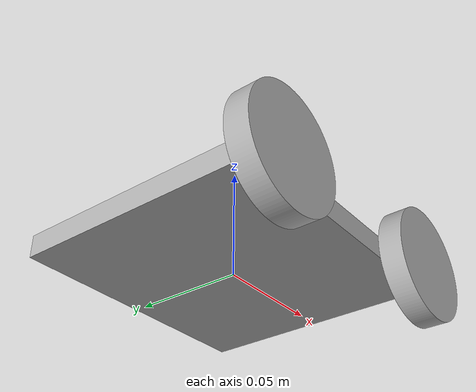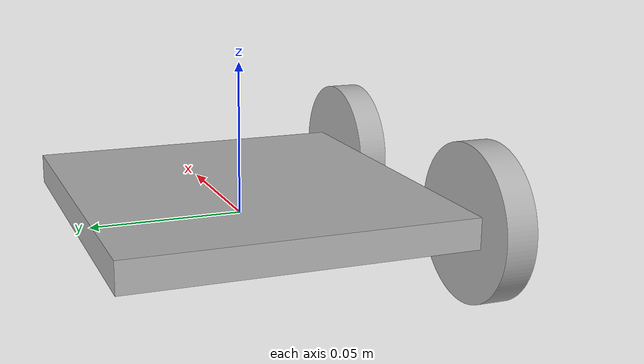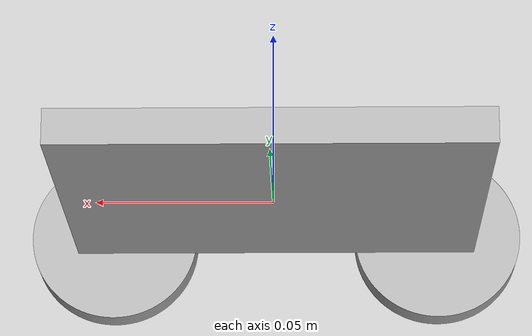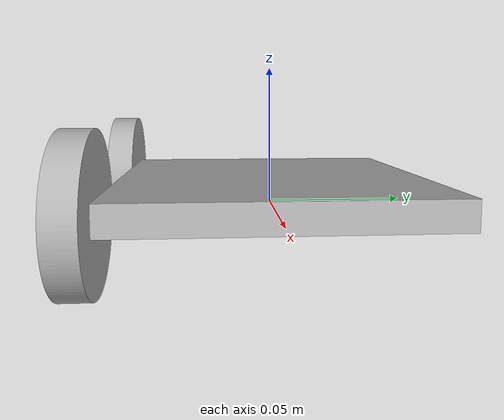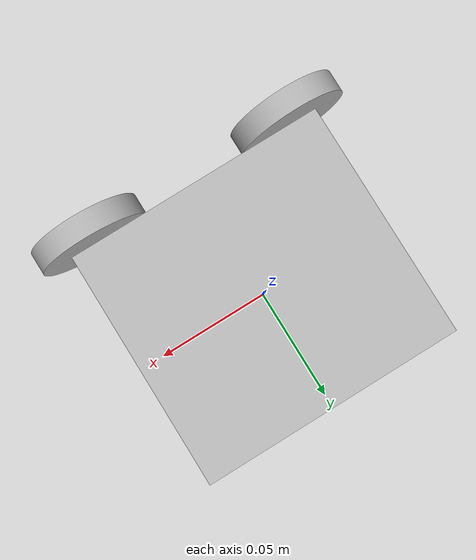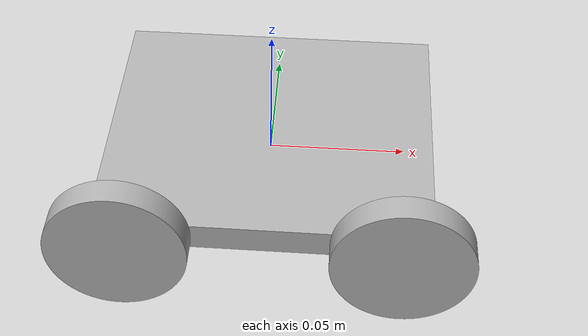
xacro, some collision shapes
<?xml version="1.0" ?>
<robot name="xbot" xmlns:xacro="http://www.ros.org/wiki/xacro">

<xacro:include filename="$(find xbot_description)/urdf/materials.xacro" />
<xacro:include filename="$(find xbot_description)/urdf/xbot.ros2control" />
<xacro:include filename="$(find xbot_description)/urdf/xbot.gazebo" />
<link name="base_link">
  <inertial>
    <origin xyz="0.0 0.0 0.005" rpy="0 0 0"/>
    <mass value="0.9450826877913348"/>
    <inertia ixx="0.000801" iyy="0.001146" izz="0.001931" ixy="0.0" iyz="0.0" ixz="0.0"/>
  </inertial>
  <visual>
    <origin xyz="0 0 0" rpy="0 0 0"/>
    <geometry>
      <mesh filename="file://$(find xbot_description)/meshes/base_link.stl" scale="0.001 0.001 0.001"/>
    </geometry>
    <material name="silver"/>
  </visual>
  <collision>
  <origin xyz="0 0 0.005" rpy="0 0 0"/>
  <geometry>
    <box size="0.12 0.11 0.01"/>
  </geometry>
</collision>
</link>

<link name="lb_wheel_1">
  <inertial>
    <origin xyz="-4.1874584825324357e-07 -0.0049999999999999975 -6.938893903907228e-18" rpy="0 0 0"/>
    <mass value="0.1541343895667492"/>
    <inertia ixx="2.5e-05" iyy="4.8e-05" izz="2.5e-05" ixy="0.0" iyz="-0.0" ixz="-0.0"/>
  </inertial>
  <visual>
    <origin xyz="-0.049055 0.055 -0.005" rpy="0 0 0"/>
    <geometry>
      <mesh filename="file://$(find xbot_description)/meshes/lb_wheel_1.stl" scale="0.001 0.001 0.001"/>
    </geometry>
    <material name="silver"/>
  </visual>
  <collision>
  <origin xyz="0 -0.005 0" rpy="1.5708 0 0"/>
  <geometry>
    <cylinder radius="0.025" length="0.01"/>
  </geometry>
</collision>
</link>

<link name="lf_wheel_1">
  <inertial>
    <origin xyz="4.1874584825324357e-07 -0.0049999999999999975 -6.938893903907228e-18" rpy="0 0 0"/>
    <mass value="0.1541343895667492"/>
    <inertia ixx="2.5e-05" iyy="4.8e-05" izz="2.5e-05" ixy="-0.0" iyz="-0.0" ixz="-0.0"/>
  </inertial>
  <visual>
    <origin xyz="0.049055 0.055 -0.005" rpy="0 0 0"/>
    <geometry>
      <mesh filename="file://$(find xbot_description)/meshes/lf_wheel_1.stl" scale="0.001 0.001 0.001"/>
    </geometry>
    <material name="silver"/>
  </visual>
  <collision>
  <origin xyz="0 -0.005 0" rpy="1.5708 0 0"/>
  <geometry>
    <cylinder radius="0.025" length="0.01"/>
  </geometry>
</collision>
</link>

<link name="rb_wheel_1">
  <inertial>
    <origin xyz="-4.1874584825324357e-07 0.0049999999999999975 -6.938893903907228e-18" rpy="0 0 0"/>
    <mass value="0.1541343895667492"/>
    <inertia ixx="2.5e-05" iyy="4.8e-05" izz="2.5e-05" ixy="-0.0" iyz="0.0" ixz="-0.0"/>
  </inertial>
  <visual>
    <origin xyz="-0.049055 -0.055 -0.005" rpy="0 0 0"/>
    <geometry>
      <mesh filename="file://$(find xbot_description)/meshes/rb_wheel_1.stl" scale="0.001 0.001 0.001"/>
    </geometry>
    <material name="silver"/>
  </visual>
  <collision>
  <origin xyz="0 0.005 0" rpy="1.5708 0 0"/>
  <geometry>
    <cylinder radius="0.025" length="0.01"/>
  </geometry>
</collision>
</link>

<link name="rf_wheel_1">
  <inertial>
    <origin xyz="4.1874584825324357e-07 0.0049999999999999975 -6.938893903907228e-18" rpy="0 0 0"/>
    <mass value="0.1541343895667492"/>
    <inertia ixx="2.5e-05" iyy="4.8e-05" izz="2.5e-05" ixy="0.0" iyz="0.0" ixz="-0.0"/>
  </inertial>
  <visual>
    <origin xyz="0.049055 -0.055 -0.005" rpy="0 0 0"/>
    <geometry>
      <mesh filename="file://$(find xbot_description)/meshes/rf_wheel_1.stl" scale="0.001 0.001 0.001"/>
    </geometry>
    <material name="silver"/>
  </visual>
  <collision>
  <origin xyz="0 0.005 0" rpy="1.5708 0 0"/>
  <geometry>
    <cylinder radius="0.025" length="0.01"/>
  </geometry>
</collision>
</link>

<joint name="left_front_wheel_joint" type="continuous">
  <origin xyz="-0.049055 -0.055 0.005" rpy="0 0 0"/>
  <parent link="base_link"/>
  <child link="lf_wheel_1"/>
  <axis xyz="0 1 0"/>
</joint>

<joint name="left_rear_wheel_joint" type="continuous">
  <origin xyz="0.049055 -0.055 0.005" rpy="0 0 0"/>
  <parent link="base_link"/>
  <child link="lb_wheel_1"/>
  <axis xyz="0 1 0"/>
</joint>

<joint name="right_front_wheel_joint" type="continuous">
  <origin xyz="-0.049055 0.055 0.005" rpy="0 0 0"/>
  <parent link="base_link"/>
  <child link="rf_wheel_1"/>
  <axis xyz="0 1 0"/>
</joint>

<joint name="right_rear_wheel_joint" type="continuous">
  <origin xyz="0.049055 0.055 0.005" rpy="0 0 0"/>
  <parent link="base_link"/>
  <child link="rb_wheel_1"/>
  <axis xyz="0 1 0"/>
</joint>

</robot>

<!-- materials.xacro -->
<robot name="xbot" xmlns:xacro="http://www.ros.org/wiki/xacro" >

<material name="silver">
  <color rgba="0.700 0.700 0.700 1.000"/>
</material>

</robot>

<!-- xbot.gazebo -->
<robot name="xbot" xmlns:xacro="http://www.ros.org/wiki/xacro" >

<xacro:property name="body_color" value="Gazebo/Silver" />

<gazebo reference="base_link">
  <material>${body_color}</material>
  <mu1>0.8</mu1>
  <mu2>0.8</mu2>
  <self_collide>false</self_collide>
  <gravity>true</gravity>
</gazebo>

<gazebo reference="lb_wheel_1">
  <material>${body_color}</material>
  <mu1>0.8</mu1>
  <mu2>0.8</mu2>
  <self_collide>false</self_collide>
</gazebo>

<gazebo reference="lf_wheel_1">
  <material>${body_color}</material>
  <mu1>0.8</mu1>
  <mu2>0.8</mu2>
  <self_collide>false</self_collide>
</gazebo>

<gazebo reference="rb_wheel_1">
  <material>${body_color}</material>
  <mu1>0.8</mu1>
  <mu2>0.8</mu2>
  <self_collide>false</self_collide>
</gazebo>

<gazebo reference="rf_wheel_1">
  <material>${body_color}</material>
  <mu1>0.8</mu1>
  <mu2>0.8</mu2>
  <self_collide>false</self_collide>
</gazebo>
<gazebo>
  <plugin
    filename="ignition-gazebo-diff-drive-system"
    name="ignition::gazebo::systems::DiffDrive">

    <!-- Left wheels -->
    <left_joint>left_front_wheel_joint</left_joint>
    <left_joint>left_rear_wheel_joint</left_joint>

    <!-- Right wheels -->
    <right_joint>right_front_wheel_joint</right_joint>
    <right_joint>right_rear_wheel_joint</right_joint>

    <!-- Dimensions measured from the exported model -->
    <wheel_separation>0.12</wheel_separation>
    <wheel_radius>0.025</wheel_radius>

    <!-- Gazebo Transport topics -->
    <topic>cmd_vel</topic>
    <odom_topic>odom</odom_topic>
    <tf_topic>tf</tf_topic>

    <!-- Odometry frames -->
    <frame_id>odom</frame_id>
    <child_frame_id>base_link</child_frame_id>
    <odom_publish_frequency>30</odom_publish_frequency>

    <!-- Conservative initial limits -->
    <max_linear_acceleration>1.0</max_linear_acceleration>
    <max_angular_acceleration>2.0</max_angular_acceleration>
  </plugin>
</gazebo>
</robot>
